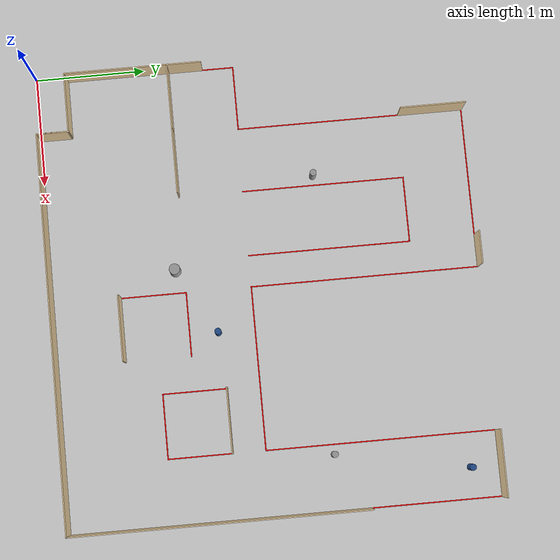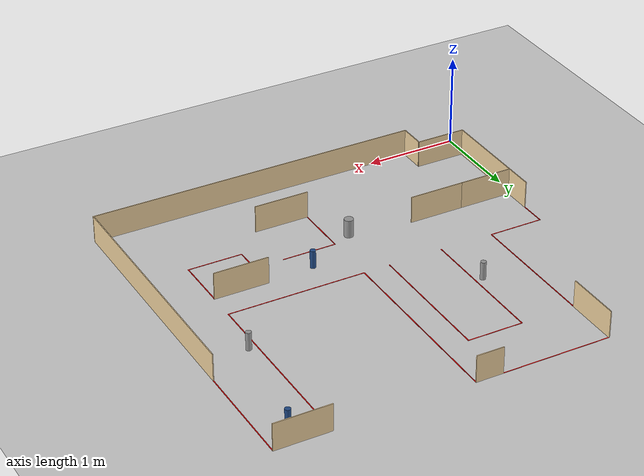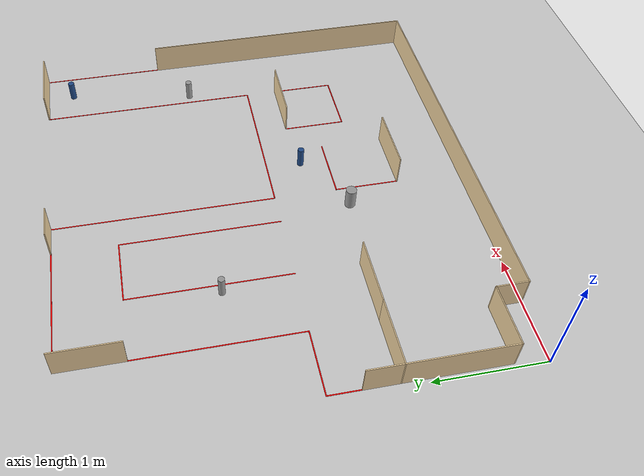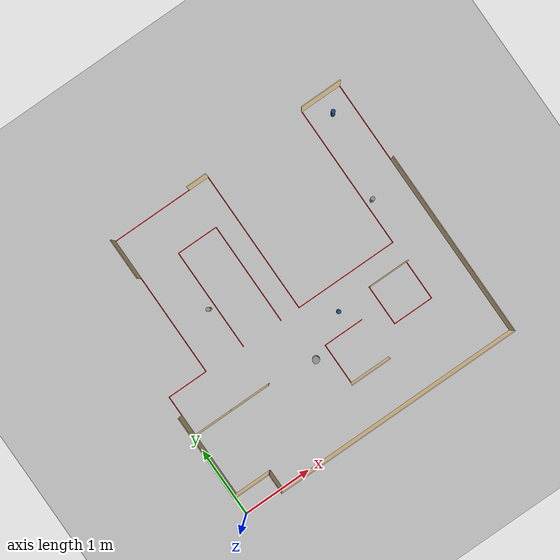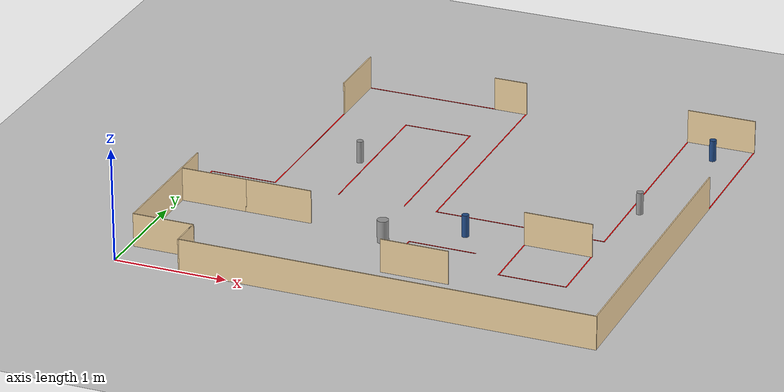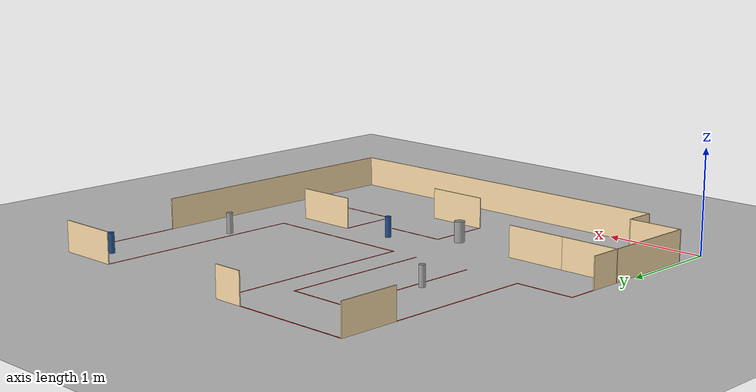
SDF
<sdf version="1.7">
 <world name="default">
  <light name="sun" type="directional">
   <pose>0 0 10 0 -0 0</pose>
   <diffuse>0.8 0.8 0.8 1</diffuse>
   <specular>0.2 0.2 0.2 1</specular>
   <attenuation>
    <range>1000</range>
    <constant>0.9</constant>
    <linear>0.01</linear>
    <quadratic>0.001</quadratic>
   </attenuation>
   <direction>-0.5 0.1 -0.9</direction>
   <spot><inner_angle>0</inner_angle><outer_angle>0</outer_angle><falloff>0</falloff></spot>
  </light>
  <model name="ground_plane">
   <static>1</static>
   <link name="link">
    <collision name="collision">
     <geometry><plane><normal>0 0 1</normal><size>100 100</size></plane></geometry>
     <surface>
      <contact><collide_bitmask>65535</collide_bitmask></contact>
      <friction><ode><mu>100</mu><mu2>50</mu2></ode></friction>
     </surface>
    </collision>
    <visual name="visual">
     <cast_shadows>0</cast_shadows>
     <geometry><plane><normal>0 0 1</normal><size>100 100</size></plane></geometry>
     <material>
      <script><uri>file://media/materials/scripts/gazebo.material</uri><name>Gazebo/Grey</name></script>
     </material>
    </visual>
   </link>
  </model>
  <gravity>0 0 -9.8</gravity>
  <magnetic_field>6e-06 2.3e-05 -4.2e-05</magnetic_field>
  <atmosphere type="adiabatic"/>
  <physics type="ode">
   <max_step_size>0.001</max_step_size>
   <real_time_factor>1</real_time_factor>
   <real_time_update_rate>1000</real_time_update_rate>
  </physics>
  <scene><ambient>0.4 0.4 0.4 1</ambient><background>0.7 0.7 0.7 1</background><shadows>1</shadows></scene>
  <spherical_coordinates>
   <surface_model>EARTH_WGS84</surface_model>
   <latitude_deg>0</latitude_deg>
   <longitude_deg>0</longitude_deg>
   <elevation>0</elevation>
   <heading_deg>0</heading_deg>
  </spherical_coordinates>
  <model name="project">
   <model name="project_world">
    <pose>-1e-06 -1e-06 0 0 -0 0</pose>
    <link name="Wall_11">
     <collision name="Wall_11_Collision">
      <geometry><box><size>2.1 0.01 0.001</size></box></geometry>
      <pose>0 0 0.0005 0 -0 0</pose>
     </collision>
     <visual name="Wall_11_Visual">
      <pose>0 0 0.0005 0 -0 0</pose>
      <geometry><box><size>2.1 0.01 0.001</size></box></geometry>
      <material>
       <script><uri>file://media/materials/scripts/gazebo.material</uri><name>Gazebo/Grey</name></script>
       <ambient>1 0 0 1</ambient>
      </material>
      <meta><layer>0</layer></meta>
     </visual>
     <pose>1.485 0.91 0 0 -0 -1.5708</pose>
    </link>
    <link name="Wall_19">
     <collision name="Wall_19_Collision">
      <geometry><box><size>1.51 0.01 0.001</size></box></geometry>
      <pose>0 0 0.0005 0 -0 0</pose>
     </collision>
     <visual name="Wall_19_Visual">
      <pose>0 0 0.0005 0 -0 0</pose>
      <geometry><box><size>1.51 0.01 0.001</size></box></geometry>
      <material>
       <script><uri>file://media/materials/scripts/gazebo.material</uri><name>Gazebo/Grey</name></script>
       <ambient>1 0 0 1</ambient>
      </material>
      <meta><layer>0</layer></meta>
     </visual>
     <pose>0.735 -0.135 0 0 -0 3.14159</pose>
    </link>
    <link name="Wall_21">
     <collision name="Wall_21_Collision">
      <geometry><box><size>2.1 0.01 0.001</size></box></geometry>
      <pose>0 0 0.0005 0 -0 0</pose>
     </collision>
     <visual name="Wall_21_Visual">
      <pose>0 0 0.0005 0 -0 0</pose>
      <geometry><box><size>2.1 0.01 0.001</size></box></geometry>
      <material>
       <script><uri>file://media/materials/scripts/gazebo.material</uri><name>Gazebo/Grey</name></script>
       <ambient>1 0 0 1</ambient>
      </material>
      <meta><layer>0</layer></meta>
     </visual>
     <pose>-0.015 0.91 0 0 -0 1.5708</pose>
    </link>
    <link name="Wall_23">
     <collision name="Wall_23_Collision">
      <geometry><box><size>0.3 0.01 0.3</size></box></geometry>
      <pose>0 0 0.15 0 -0 0</pose>
     </collision>
     <visual name="Wall_23_Visual">
      <pose>0 0 0.15 0 -0 0</pose>
      <geometry><box><size>0.3 0.01 0.3</size></box></geometry>
      <material>
       <script><uri>file://media/materials/scripts/gazebo.material</uri><name>Gazebo/Grey</name></script>
       <ambient>0.921569 0.807843 0.615686 1</ambient>
      </material>
      <meta><layer>0</layer></meta>
     </visual>
     <pose>-0.16 1.955 0 0 -0 3.14159</pose>
    </link>
    <link name="Wall_26">
     <collision name="Wall_26_Collision">
      <geometry><box><size>1.2 0.01 0.001</size></box></geometry>
      <pose>0 0 0.0005 0 -0 0</pose>
     </collision>
     <visual name="Wall_26_Visual">
      <pose>0 0 0.0005 0 -0 0</pose>
      <geometry><box><size>1.2 0.01 0.001</size></box></geometry>
      <material>
       <script><uri>file://media/materials/scripts/gazebo.material</uri><name>Gazebo/Grey</name></script>
       <ambient>1 0 0 1</ambient>
      </material>
      <meta><layer>0</layer></meta>
     </visual>
     <pose>-0.9 1.955 0 0 -0 3.14159</pose>
    </link>
    <link name="Wall_28">
     <collision name="Wall_28_Collision">
      <geometry><box><size>0.6 0.01 0.3</size></box></geometry>
      <pose>0 0 0.15 0 -0 0</pose>
     </collision>
     <visual name="Wall_28_Visual">
      <pose>0 0 0.15 0 -0 0</pose>
      <geometry><box><size>0.6 0.01 0.3</size></box></geometry>
      <material>
       <script><uri>file://media/materials/scripts/gazebo.material</uri><name>Gazebo/Grey</name></script>
       <ambient>0.921569 0.807843 0.615686 1</ambient>
      </material>
      <meta><layer>0</layer></meta>
     </visual>
     <pose>-1.495 1.66 0 0 -0 -1.5708</pose>
    </link>
    <link name="Wall_30">
     <collision name="Wall_30_Collision">
      <geometry><box><size>1.5 0.01 0.001</size></box></geometry>
      <pose>0 0 0.0005 0 -0 0</pose>
     </collision>
     <visual name="Wall_30_Visual">
      <pose>0 0 0.0005 0 -0 0</pose>
      <geometry><box><size>1.5 0.01 0.001</size></box></geometry>
      <material>
       <script><uri>file://media/materials/scripts/gazebo.material</uri><name>Gazebo/Grey</name></script>
       <ambient>1 0 0 1</ambient>
      </material>
      <meta><layer>0</layer></meta>
     </visual>
     <pose>-1.495 0.62 0 0 -0 -1.5708</pose>
    </link>
    <link name="Wall_32">
     <collision name="Wall_32_Collision">
      <geometry><box><size>0.6 0.01 0.001</size></box></geometry>
      <pose>0 0 0.0005 0 -0 0</pose>
     </collision>
     <visual name="Wall_32_Visual">
      <pose>0 0 0.0005 0 -0 0</pose>
      <geometry><box><size>0.6 0.01 0.001</size></box></geometry>
      <material>
       <script><uri>file://media/materials/scripts/gazebo.material</uri><name>Gazebo/Grey</name></script>
       <ambient>1 0 0 1</ambient>
      </material>
      <meta><layer>0</layer></meta>
     </visual>
     <pose>-1.79 -0.125 0 0 -0 3.14159</pose>
    </link>
    <link name="Wall_34">
     <collision name="Wall_34_Collision">
      <geometry><box><size>0.3 0.01 0.001</size></box></geometry>
      <pose>0 0 0.0005 0 -0 0</pose>
     </collision>
     <visual name="Wall_34_Visual">
      <pose>0 0 0.0005 0 -0 0</pose>
      <geometry><box><size>0.3 0.01 0.001</size></box></geometry>
      <material>
       <script><uri>file://media/materials/scripts/gazebo.material</uri><name>Gazebo/Grey</name></script>
       <ambient>1 0 0 1</ambient>
      </material>
      <meta><layer>0</layer></meta>
     </visual>
     <pose>-2.085 -0.27 0 0 -0 -1.5708</pose>
    </link>
    <link name="Wall_36">
     <collision name="Wall_36_Collision">
      <geometry><box><size>1.25 0.01 0.3</size></box></geometry>
      <pose>0 0 0.15 0 -0 0</pose>
     </collision>
     <visual name="Wall_36_Visual">
      <pose>0 0 0.15 0 -0 0</pose>
      <geometry><box><size>1.25 0.01 0.3</size></box></geometry>
      <material>
       <script><uri>file://media/materials/scripts/gazebo.material</uri><name>Gazebo/Grey</name></script>
       <ambient>0.921569 0.807843 0.615686 1</ambient>
      </material>
      <meta><layer>0</layer></meta>
     </visual>
     <pose>-2.085 -1.035 0 0 -0 -1.5708</pose>
    </link>
    <link name="Wall_41">
     <collision name="Wall_41_Collision">
      <geometry><box><size>0.6 0.01 0.3</size></box></geometry>
      <pose>0 0 0.15 0 -0 0</pose>
     </collision>
     <visual name="Wall_41_Visual">
      <pose>0 0 0.15 0 -0 0</pose>
      <geometry><box><size>0.6 0.01 0.3</size></box></geometry>
      <material>
       <script><uri>file://media/materials/scripts/gazebo.material</uri><name>Gazebo/Grey</name></script>
       <ambient>0.921569 0.807843 0.615686 1</ambient>
      </material>
      <meta><layer>0</layer></meta>
     </visual>
     <pose>-1.79 -0.725 0 0 -0 3.14159</pose>
    </link>
    <link name="Wall_43">
     <collision name="Wall_43_Collision">
      <geometry><box><size>0.6 0.01 0.3</size></box></geometry>
      <pose>0 0 0.15 0 -0 0</pose>
     </collision>
     <visual name="Wall_43_Visual">
      <pose>0 0 0.15 0 -0 0</pose>
      <geometry><box><size>0.6 0.01 0.3</size></box></geometry>
      <material>
       <script><uri>file://media/materials/scripts/gazebo.material</uri><name>Gazebo/Grey</name></script>
       <ambient>0.921569 0.807843 0.615686 1</ambient>
      </material>
      <meta><layer>0</layer></meta>
     </visual>
     <pose>-1.2 -0.725 0 0 -0 0</pose>
    </link>
    <link name="Wall_45">
     <collision name="Wall_45_Collision">
      <geometry><box><size>2.73 0.01 0.3</size></box></geometry>
      <pose>0 0 0.15 0 -0 0</pose>
     </collision>
     <visual name="Wall_45_Visual">
      <pose>0 0 0.15 0 -0 0</pose>
      <geometry><box><size>2.73 0.01 0.3</size></box></geometry>
      <material>
       <script><uri>file://media/materials/scripts/gazebo.material</uri><name>Gazebo/Grey</name></script>
       <ambient>0.921569 0.807843 0.615686 1</ambient>
      </material>
      <meta><layer>0</layer></meta>
     </visual>
     <pose>2.085 -0.595 0 0 -0 -1.5708</pose>
    </link>
    <link name="Wall_47">
     <collision name="Wall_47_Collision">
      <geometry><box><size>3.64 0.01 0.3</size></box></geometry>
      <pose>0 0 0.15 0 -0 0</pose>
     </collision>
     <visual name="Wall_47_Visual">
      <pose>0 0 0.15 0 -0 0</pose>
      <geometry><box><size>3.64 0.01 0.3</size></box></geometry>
      <material>
       <script><uri>file://media/materials/scripts/gazebo.material</uri><name>Gazebo/Grey</name></script>
       <ambient>0.921569 0.807843 0.615686 1</ambient>
      </material>
      <meta><layer>0</layer></meta>
     </visual>
     <pose>0.27 -1.955 0 0 -0 3.14159</pose>
    </link>
    <link name="Wall_61">
     <collision name="Wall_61_Collision">
      <geometry><box><size>0.61 0.01 0.001</size></box></geometry>
      <pose>0 0 0.0005 0 -0 0</pose>
     </collision>
     <visual name="Wall_61_Visual">
      <pose>0 0 0.0005 0 -0 0</pose>
      <geometry><box><size>0.61 0.01 0.001</size></box></geometry>
      <material>
       <script><uri>file://media/materials/scripts/gazebo.material</uri><name>Gazebo/Grey</name></script>
       <ambient>1 0 0 1</ambient>
      </material>
      <meta><layer>0</layer></meta>
     </visual>
     <pose>-0.605 1.355 0 0 -0 3.14159</pose>
    </link>
    <link name="Wall_63">
     <collision name="Wall_63_Collision">
      <geometry><box><size>1.5 0.01 0.001</size></box></geometry>
      <pose>0 0 0.0005 0 -0 0</pose>
     </collision>
     <visual name="Wall_63_Visual">
      <pose>0 0 0.0005 0 -0 0</pose>
      <geometry><box><size>1.5 0.01 0.001</size></box></geometry>
      <material>
       <script><uri>file://media/materials/scripts/gazebo.material</uri><name>Gazebo/Grey</name></script>
       <ambient>1 0 0 1</ambient>
      </material>
      <meta><layer>0</layer></meta>
     </visual>
     <pose>-0.905 0.61 0 0 -0 -1.5708</pose>
    </link>
    <link name="Wall_65">
     <collision name="Wall_65_Collision">
      <geometry><box><size>1.5 0.01 0.001</size></box></geometry>
      <pose>0 0 0.0005 0 -0 0</pose>
     </collision>
     <visual name="Wall_65_Visual">
      <pose>0 0 0.0005 0 -0 0</pose>
      <geometry><box><size>1.5 0.01 0.001</size></box></geometry>
      <material>
       <script><uri>file://media/materials/scripts/gazebo.material</uri><name>Gazebo/Grey</name></script>
       <ambient>1 0 0 1</ambient>
      </material>
      <meta><layer>0</layer></meta>
     </visual>
     <pose>-0.305 0.61 0 0 -0 -1.5708</pose>
    </link>
    <link name="Wall_69">
     <collision name="Wall_69_Collision">
      <geometry><box><size>0.6 0.01 0.3</size></box></geometry>
      <pose>0 0 0.15 0 -0 0</pose>
     </collision>
     <visual name="Wall_69_Visual">
      <pose>0 0 0.15 0 -0 0</pose>
      <geometry><box><size>0.6 0.01 0.3</size></box></geometry>
      <material>
       <script><uri>file://media/materials/scripts/gazebo.material</uri><name>Gazebo/Grey</name></script>
       <ambient>0.921569 0.807843 0.615686 1</ambient>
      </material>
      <meta><layer>0</layer></meta>
     </visual>
     <pose>1.19 -0.435 0 0 -0 3.14159</pose>
    </link>
    <link name="Wall_71">
     <collision name="Wall_71_Collision">
      <geometry><box><size>0.6 0.01 0.001</size></box></geometry>
      <pose>0 0 0.0005 0 -0 0</pose>
     </collision>
     <visual name="Wall_71_Visual">
      <pose>0 0 0.0005 0 -0 0</pose>
      <geometry><box><size>0.6 0.01 0.001</size></box></geometry>
      <material>
       <script><uri>file://media/materials/scripts/gazebo.material</uri><name>Gazebo/Grey</name></script>
       <ambient>1 0 0 1</ambient>
      </material>
      <meta><layer>0</layer></meta>
     </visual>
     <pose>0.895 -0.73 0 0 -0 -1.5708</pose>
    </link>
    <link name="Wall_73">
     <collision name="Wall_73_Collision">
      <geometry><box><size>0.6 0.01 0.001</size></box></geometry>
      <pose>0 0 0.0005 0 -0 0</pose>
     </collision>
     <visual name="Wall_73_Visual">
      <pose>0 0 0.0005 0 -0 0</pose>
      <geometry><box><size>0.6 0.01 0.001</size></box></geometry>
      <material>
       <script><uri>file://media/materials/scripts/gazebo.material</uri><name>Gazebo/Grey</name></script>
       <ambient>1 0 0 1</ambient>
      </material>
      <meta><layer>0</layer></meta>
     </visual>
     <pose>1.485 -0.73 0 0 -0 -1.5708</pose>
    </link>
    <link name="Wall_75">
     <collision name="Wall_75_Collision">
      <geometry><box><size>0.6 0.01 0.001</size></box></geometry>
      <pose>0 0 0.0005 0 -0 0</pose>
     </collision>
     <visual name="Wall_75_Visual">
      <pose>0 0 0.0005 0 -0 0</pose>
      <geometry><box><size>0.6 0.01 0.001</size></box></geometry>
      <material>
       <script><uri>file://media/materials/scripts/gazebo.material</uri><name>Gazebo/Grey</name></script>
       <ambient>1 0 0 1</ambient>
      </material>
      <meta><layer>0</layer></meta>
     </visual>
     <pose>1.19 -1.025 0 0 -0 0</pose>
    </link>
    <link name="Wall_77">
     <collision name="Wall_77_Collision">
      <geometry><box><size>0.61 0.01 0.3</size></box></geometry>
      <pose>0 0 0.15 0 -0 0</pose>
     </collision>
     <visual name="Wall_77_Visual">
      <pose>0 0 0.15 0 -0 0</pose>
      <geometry><box><size>0.61 0.01 0.3</size></box></geometry>
      <material>
       <script><uri>file://media/materials/scripts/gazebo.material</uri><name>Gazebo/Grey</name></script>
       <ambient>0.921569 0.807843 0.615686 1</ambient>
      </material>
      <meta><layer>0</layer></meta>
     </visual>
     <pose>1.785 1.955 0 0 -0 0</pose>
    </link>
    <link name="Wall_79">
     <collision name="Wall_79_Collision">
      <geometry><box><size>0.29 0.001 0.3</size></box></geometry>
      <pose>0 0 0.15 0 -0 0</pose>
     </collision>
     <visual name="Wall_79_Visual">
      <pose>0 0 0.15 0 -0 0</pose>
      <geometry><box><size>0.29 0.001 0.3</size></box></geometry>
      <material>
       <script><uri>file://media/materials/scripts/gazebo.material</uri><name>Gazebo/Grey</name></script>
       <ambient>1 1 1 1</ambient>
      </material>
      <meta><layer>0</layer></meta>
     </visual>
     <pose>-1.545 -1.81 0 0 -0 1.5708</pose>
    </link>
    <link name="Wall_81">
     <collision name="Wall_81_Collision">
      <geometry><box><size>0.3 0.01 0.3</size></box></geometry>
      <pose>0 0 0.15 0 -0 0</pose>
     </collision>
     <visual name="Wall_81_Visual">
      <pose>0 0 0.15 0 -0 0</pose>
      <geometry><box><size>0.3 0.01 0.3</size></box></geometry>
      <material>
       <script><uri>file://media/materials/scripts/gazebo.material</uri><name>Gazebo/Grey</name></script>
       <ambient>0.921569 0.807843 0.615686 1</ambient>
      </material>
      <meta><layer>0</layer></meta>
     </visual>
     <pose>-1.545 -1.81 0 0 -0 1.5708</pose>
    </link>
    <link name="Wall_84">
     <collision name="Wall_84_Collision">
      <geometry><box><size>0.55 0.01 0.3</size></box></geometry>
      <pose>0 0 0.15 0 -0 0</pose>
     </collision>
     <visual name="Wall_84_Visual">
      <pose>0 0 0.15 0 -0 0</pose>
      <geometry><box><size>0.55 0.01 0.3</size></box></geometry>
      <material>
       <script><uri>file://media/materials/scripts/gazebo.material</uri><name>Gazebo/Grey</name></script>
       <ambient>0.921569 0.807843 0.615686 1</ambient>
      </material>
      <meta><layer>0</layer></meta>
     </visual>
     <pose>-1.815 -1.665 0 0 -0 3.14159</pose>
    </link>
    <link name="Wall_9">
     <collision name="Wall_9_Collision">
      <geometry><box><size>1.2 0.01 0.001</size></box></geometry>
      <pose>0 0 0.0005 0 -0 0</pose>
     </collision>
     <visual name="Wall_9_Visual">
      <pose>0 0 0.0005 0 -0 0</pose>
      <geometry><box><size>1.2 0.01 0.001</size></box></geometry>
      <material>
       <script><uri>file://media/materials/scripts/gazebo.material</uri><name>Gazebo/Grey</name></script>
       <ambient>1 0 0 1</ambient>
      </material>
      <meta><layer>0</layer></meta>
     </visual>
     <pose>2.085 1.36 0 0 -0 -1.5708</pose>
    </link>
    <link name="Wall_92">
     <collision name="Wall_92_Collision">
      <geometry><box><size>0.6 0.01 0.001</size></box></geometry>
      <pose>0 0 0.0005 0 -0 0</pose>
     </collision>
     <visual name="Wall_92_Visual">
      <pose>0 0 0.0005 0 -0 0</pose>
      <geometry><box><size>0.6 0.01 0.001</size></box></geometry>
      <material>
       <script><uri>file://media/materials/scripts/gazebo.material</uri><name>Gazebo/Grey</name></script>
       <ambient>1 0 0 1</ambient>
      </material>
      <meta><layer>0</layer></meta>
     </visual>
     <pose>0.28 -0.735 0 0 -0 0</pose>
    </link>
    <link name="Wall_94">
     <collision name="Wall_94_Collision">
      <geometry><box><size>0.61 0.01 0.001</size></box></geometry>
      <pose>0 0 0.0005 0 -0 0</pose>
     </collision>
     <visual name="Wall_94_Visual">
      <pose>0 0 0.0005 0 -0 0</pose>
      <geometry><box><size>0.61 0.01 0.001</size></box></geometry>
      <material>
       <script><uri>file://media/materials/scripts/gazebo.material</uri><name>Gazebo/Grey</name></script>
       <ambient>1 0 0 1</ambient>
      </material>
      <meta><layer>0</layer></meta>
     </visual>
     <pose>-0.015 -1.035 0 0 -0 -1.5708</pose>
    </link>
    <link name="Wall_96">
     <collision name="Wall_96_Collision">
      <geometry><box><size>0.6 0.01 0.3</size></box></geometry>
      <pose>0 0 0.15 0 -0 0</pose>
     </collision>
     <visual name="Wall_96_Visual">
      <pose>0 0 0.15 0 -0 0</pose>
      <geometry><box><size>0.6 0.01 0.3</size></box></geometry>
      <material>
       <script><uri>file://media/materials/scripts/gazebo.material</uri><name>Gazebo/Grey</name></script>
       <ambient>0.921569 0.807843 0.615686 1</ambient>
      </material>
      <meta><layer>0</layer></meta>
     </visual>
     <pose>0.28 -1.335 0 0 -0 0</pose>
    </link>
    <static>1</static>
   </model>
   <static>0</static>
   <pose>2.12503 1.95486 0 0 -0 0</pose>
  </model>
  <model name="obstacle_0">
   <link name="link_0">
    <inertial>
     <mass>1</mass>
     <inertia><ixx>0.145833</ixx><ixy>0</ixy><ixz>0</ixz><iyy>0.145833</iyy><iyz>0</iyz><izz>0.125</izz></inertia>
    </inertial>
    <visual name="visual">
     <geometry><cylinder><radius>0.05</radius><length>0.2</length></cylinder></geometry>
     <material>
      <lighting>1</lighting>
      <script><uri>file://media/materials/scripts/gazebo.material</uri><name>Gazebo/Grey</name></script>
      <shader type="pixel"><normal_map>__default__</normal_map></shader>
      <ambient>0.3 0.3 0.3 1</ambient>
      <diffuse>0.7 0.7 0.7 1</diffuse>
      <specular>0.01 0.01 0.01 1</specular>
      <emissive>0 0 0 1</emissive>
     </material>
    </visual>
    <collision name="collision">
     <geometry><cylinder><radius>0.05</radius><length>0.2</length></cylinder></geometry>
     <surface>
      <friction>
       <ode><mu>1</mu><mu2>1</mu2><fdir1>0 0 0</fdir1><slip1>0</slip1><slip2>0</slip2></ode>
       <torsional>
        <coefficient>1</coefficient>
        <patch_radius>0</patch_radius>
        <surface_radius>0</surface_radius>
        <use_patch_radius>1</use_patch_radius>
        <ode><slip>0</slip></ode>
       </torsional>
      </friction>
      <bounce><restitution_coefficient>0</restitution_coefficient><threshold>1e+06</threshold></bounce>
      <contact>
       <collide_without_contact>0</collide_without_contact>
       <collide_without_contact_bitmask>1</collide_without_contact_bitmask>
       <collide_bitmask>1</collide_bitmask>
       <ode>
        <soft_cfm>0</soft_cfm>
        <soft_erp>0.2</soft_erp>
        <kp>1e+13</kp>
        <kd>1</kd>
        <max_vel>0.01</max_vel>
        <min_depth>0</min_depth>
       </ode>
       <bullet>
        <split_impulse>1</split_impulse>
        <split_impulse_penetration_threshold>-0.01</split_impulse_penetration_threshold>
        <soft_cfm>0</soft_cfm>
        <soft_erp>0.2</soft_erp>
        <kp>1e+13</kp>
        <kd>1</kd>
       </bullet>
      </contact>
     </surface>
    </collision>
   </link>
   <static>0</static>
   <pose>1.90825 1.14099 0.099994 0 -0 0</pose>
  </model>
  <model name="bottle_0">
   <link name="link_0">
    <inertial>
     <mass>1</mass>
     <inertia><ixx>0.145833</ixx><ixy>0</ixy><ixz>0</ixz><iyy>0.145833</iyy><iyz>0</iyz><izz>0.125</izz></inertia>
    </inertial>
    <visual name="visual">
     <geometry><cylinder><radius>0.03</radius><length>0.2</length></cylinder></geometry>
     <material>
      <lighting>1</lighting>
      <script><uri>file://media/materials/scripts/gazebo.material</uri><name>Gazebo/Grey</name></script>
      <shader type="pixel"><normal_map>__default__</normal_map></shader>
      <ambient>0.125 0.29 0.529 1</ambient>
      <diffuse>0.125 0.29 0.529 1</diffuse>
      <specular>0.125 0.29 0.529 1</specular>
      <emissive>0 0 0 1</emissive>
     </material>
    </visual>
    <collision name="collision">
     <geometry><cylinder><radius>0.03</radius><length>0.2</length></cylinder></geometry>
     <surface>
      <friction>
       <ode><mu>1</mu><mu2>1</mu2><fdir1>0 0 0</fdir1><slip1>0</slip1><slip2>0</slip2></ode>
       <torsional>
        <coefficient>1</coefficient>
        <patch_radius>0</patch_radius>
        <surface_radius>0</surface_radius>
        <use_patch_radius>1</use_patch_radius>
        <ode><slip>0</slip></ode>
       </torsional>
      </friction>
      <bounce><restitution_coefficient>0</restitution_coefficient><threshold>1e+06</threshold></bounce>
      <contact>
       <collide_without_contact>0</collide_without_contact>
       <collide_without_contact_bitmask>1</collide_without_contact_bitmask>
       <collide_bitmask>1</collide_bitmask>
       <ode>
        <soft_cfm>0</soft_cfm>
        <soft_erp>0.2</soft_erp>
        <kp>1e+13</kp>
        <kd>1</kd>
        <max_vel>0.01</max_vel>
        <min_depth>0</min_depth>
       </ode>
       <bullet>
        <split_impulse>1</split_impulse>
        <split_impulse_penetration_threshold>-0.01</split_impulse_penetration_threshold>
        <soft_cfm>0</soft_cfm>
        <soft_erp>0.2</soft_erp>
        <kp>1e+13</kp>
        <kd>1</kd>
       </bullet>
      </contact>
     </surface>
    </collision>
   </link>
   <static>0</static>
   <pose>2.50584 1.48461 0.100835 0 -0 0</pose>
  </model>
  <model name="bottle">
   <link name="link_0">
    <inertial>
     <mass>1</mass>
     <inertia><ixx>0.145833</ixx><ixy>0</ixy><ixz>0</ixz><iyy>0.145833</iyy><iyz>0</iyz><izz>0.125</izz></inertia>
    </inertial>
    <visual name="visual">
     <geometry><cylinder><radius>0.03</radius><length>0.2</length></cylinder></geometry>
     <material>
      <lighting>1</lighting>
      <script><uri>file://media/materials/scripts/gazebo.material</uri><name>Gazebo/Grey</name></script>
      <shader type="pixel"><normal_map>__default__</normal_map></shader>
      <ambient>0.122 0.286 0.525 1</ambient>
      <diffuse>0.729 0.741 0.714 1</diffuse>
      <specular>0.561 0.349 0.008 1</specular>
      <emissive>0 0 0 1</emissive>
     </material>
    </visual>
    <collision name="collision">
     <geometry><cylinder><radius>0.03</radius><length>0.2</length></cylinder></geometry>
     <surface>
      <friction>
       <ode><mu>1</mu><mu2>1</mu2><fdir1>0 0 0</fdir1><slip1>0</slip1><slip2>0</slip2></ode>
       <torsional>
        <coefficient>1</coefficient>
        <patch_radius>0</patch_radius>
        <surface_radius>0</surface_radius>
        <use_patch_radius>1</use_patch_radius>
        <ode><slip>0</slip></ode>
       </torsional>
      </friction>
      <bounce><restitution_coefficient>0</restitution_coefficient><threshold>1e+06</threshold></bounce>
      <contact>
       <collide_without_contact>0</collide_without_contact>
       <collide_without_contact_bitmask>1</collide_without_contact_bitmask>
       <collide_bitmask>1</collide_bitmask>
       <ode>
        <soft_cfm>0</soft_cfm>
        <soft_erp>0.2</soft_erp>
        <kp>1e+13</kp>
        <kd>1</kd>
        <max_vel>0.01</max_vel>
        <min_depth>0</min_depth>
       </ode>
       <bullet>
        <split_impulse>1</split_impulse>
        <split_impulse_penetration_threshold>-0.01</split_impulse_penetration_threshold>
        <soft_cfm>0</soft_cfm>
        <soft_erp>0.2</soft_erp>
        <kp>1e+13</kp>
        <kd>1</kd>
       </bullet>
      </contact>
     </surface>
    </collision>
   </link>
   <static>0</static>
   <pose>3.92346 3.6485 0.088497 0 -0 0</pose>
  </model>
  <model name="obstacle">
   <link name="link_0">
    <inertial>
     <mass>1</mass>
     <inertia><ixx>0.145833</ixx><ixy>0</ixy><ixz>0</ixz><iyy>0.145833</iyy><iyz>0</iyz><izz>0.125</izz></inertia>
    </inertial>
    <pose>0.011394 0 0 0 -0 0</pose>
    <visual name="visual">
     <geometry><cylinder><radius>0.03</radius><length>0.2</length></cylinder></geometry>
     <material>
      <lighting>1</lighting>
      <script><uri>file://media/materials/scripts/gazebo.material</uri><name>Gazebo/Grey</name></script>
      <shader type="pixel"><normal_map>__default__</normal_map></shader>
      <ambient>0.3 0.3 0.3 1</ambient>
      <diffuse>0.7 0.7 0.7 1</diffuse>
      <specular>0.01 0.01 0.01 1</specular>
      <emissive>0 0 0 1</emissive>
     </material>
    </visual>
    <collision name="collision">
     <geometry><cylinder><radius>0.03</radius><length>0.2</length></cylinder></geometry>
     <surface>
      <friction>
       <ode><mu>1</mu><mu2>1</mu2><fdir1>0 0 0</fdir1><slip1>0</slip1><slip2>0</slip2></ode>
       <torsional>
        <coefficient>1</coefficient>
        <patch_radius>0</patch_radius>
        <surface_radius>0</surface_radius>
        <use_patch_radius>1</use_patch_radius>
        <ode><slip>0</slip></ode>
       </torsional>
      </friction>
      <bounce><restitution_coefficient>0</restitution_coefficient><threshold>1e+06</threshold></bounce>
      <contact>
       <collide_without_contact>0</collide_without_contact>
       <collide_without_contact_bitmask>1</collide_without_contact_bitmask>
       <collide_bitmask>1</collide_bitmask>
       <ode>
        <soft_cfm>0</soft_cfm>
        <soft_erp>0.2</soft_erp>
        <kp>1e+13</kp>
        <kd>1</kd>
        <max_vel>0.01</max_vel>
        <min_depth>0</min_depth>
       </ode>
       <bullet>
        <split_impulse>1</split_impulse>
        <split_impulse_penetration_threshold>-0.01</split_impulse_penetration_threshold>
        <soft_cfm>0</soft_cfm>
        <soft_erp>0.2</soft_erp>
        <kp>1e+13</kp>
        <kd>1</kd>
       </bullet>
      </contact>
     </surface>
    </collision>
   </link>
   <static>0</static>
   <pose>3.68747 2.43159 0.099994 0 -0 0</pose>
  </model>
  <model name="obstacle_1">
   <link name="link_0">
    <inertial>
     <mass>1</mass>
     <inertia><ixx>0.145833</ixx><ixy>0</ixy><ixz>0</ixz><iyy>0.145833</iyy><iyz>0</iyz><izz>0.125</izz></inertia>
    </inertial>
    <visual name="visual">
     <geometry><cylinder><radius>0.03</radius><length>0.2</length></cylinder></geometry>
     <material>
      <lighting>1</lighting>
      <script><uri>file://media/materials/scripts/gazebo.material</uri><name>Gazebo/Grey</name></script>
      <shader type="pixel"><normal_map>__default__</normal_map></shader>
      <ambient>0.3 0.3 0.3 1</ambient>
      <diffuse>0.7 0.7 0.7 1</diffuse>
      <specular>0.01 0.01 0.01 1</specular>
      <emissive>0 0 0 1</emissive>
     </material>
    </visual>
    <collision name="collision">
     <geometry><cylinder><radius>0.03</radius><length>0.2</length></cylinder></geometry>
     <surface>
      <friction>
       <ode><mu>1</mu><mu2>1</mu2><fdir1>0 0 0</fdir1><slip1>0</slip1><slip2>0</slip2></ode>
       <torsional>
        <coefficient>1</coefficient>
        <patch_radius>0</patch_radius>
        <surface_radius>0</surface_radius>
        <use_patch_radius>1</use_patch_radius>
        <ode><slip>0</slip></ode>
       </torsional>
      </friction>
      <bounce><restitution_coefficient>0</restitution_coefficient><threshold>1e+06</threshold></bounce>
      <contact>
       <collide_without_contact>0</collide_without_contact>
       <collide_without_contact_bitmask>1</collide_without_contact_bitmask>
       <collide_bitmask>1</collide_bitmask>
       <ode>
        <soft_cfm>0</soft_cfm>
        <soft_erp>0.2</soft_erp>
        <kp>1e+13</kp>
        <kd>1</kd>
        <max_vel>0.01</max_vel>
        <min_depth>0</min_depth>
       </ode>
       <bullet>
        <split_impulse>1</split_impulse>
        <split_impulse_penetration_threshold>-0.01</split_impulse_penetration_threshold>
        <soft_cfm>0</soft_cfm>
        <soft_erp>0.2</soft_erp>
        <kp>1e+13</kp>
        <kd>1</kd>
       </bullet>
      </contact>
     </surface>
    </collision>
   </link>
   <static>0</static>
   <pose>1.13776 2.47461 0.100164 0 -0 0</pose>
  </model>
 </world>
</sdf>
